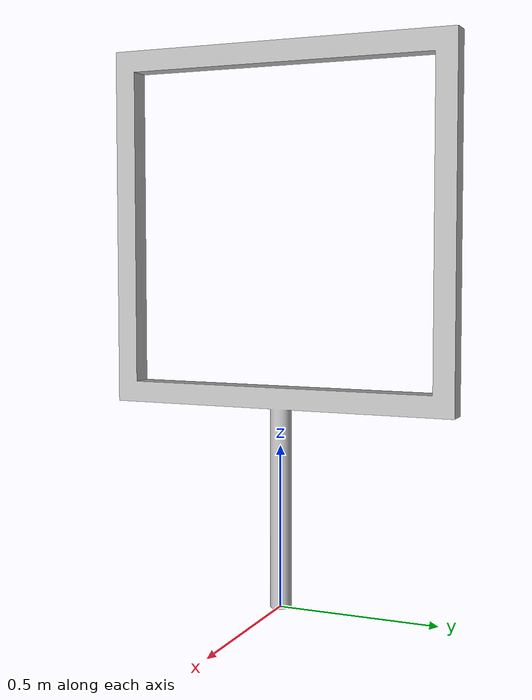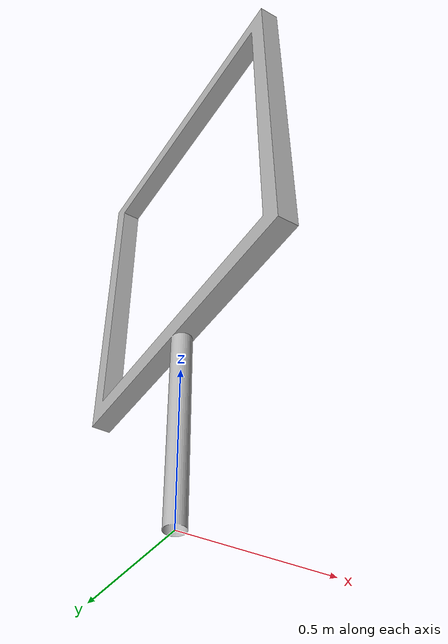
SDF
<?xml version="1.0"?>
<sdf version="1.5">
    <model name="frame_1_8">
        <static>true</static>
        <link name="link">
            <collision name="collision1">
                <pose>0 0 0 0 0 0</pose>
                <geometry>
                    <mesh>
                        <uri>model://frame_1.8/meshes/frame_1_8.dae</uri>
                    </mesh>
                </geometry>
            </collision>
            <visual name="visual1">

              <pose>0 0 0 0 0 0</pose>
              <geometry>
              <mesh>
                 <uri>model://frame_1.8/meshes/frame_1_8.dae</uri>
              </mesh>
              </geometry>
             </visual>
        </link>
    </model>
</sdf>
